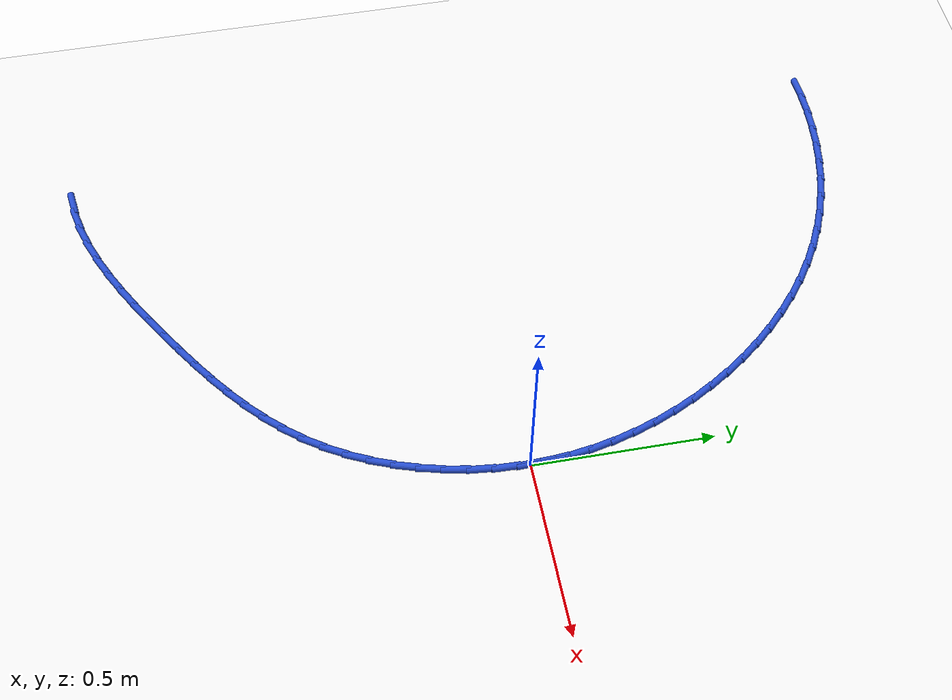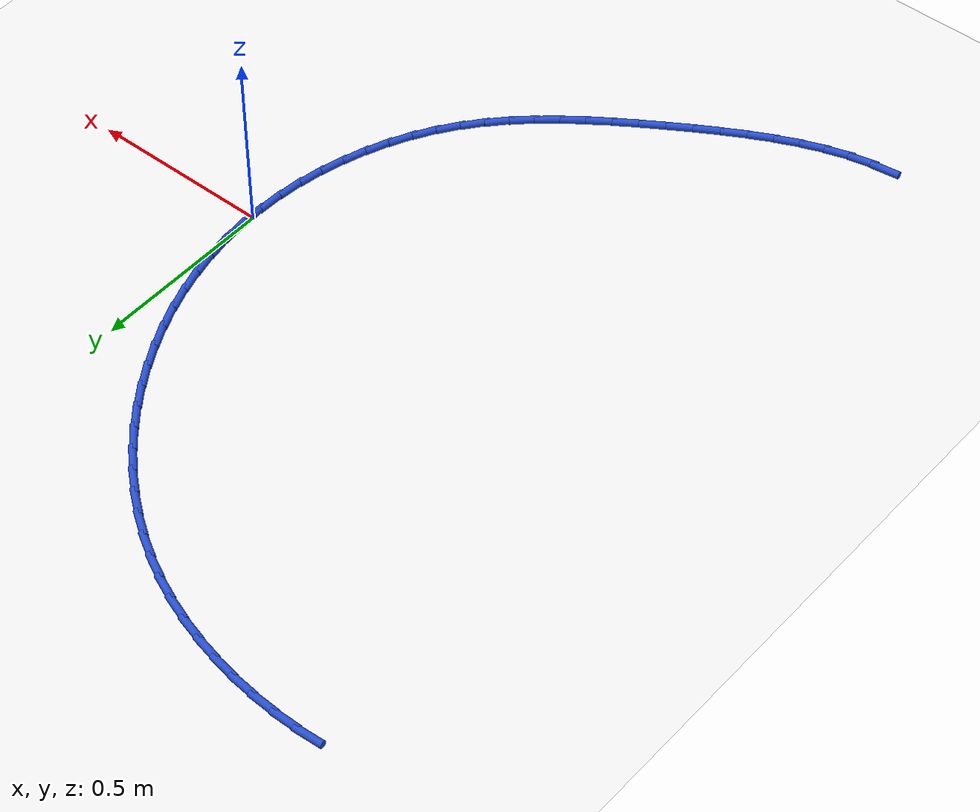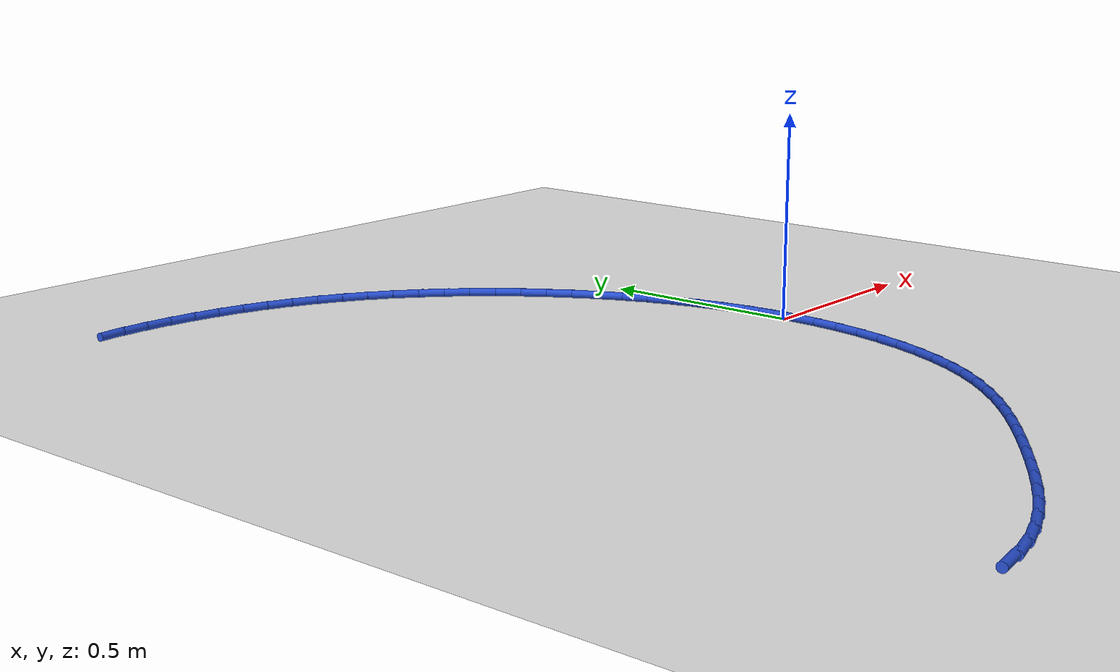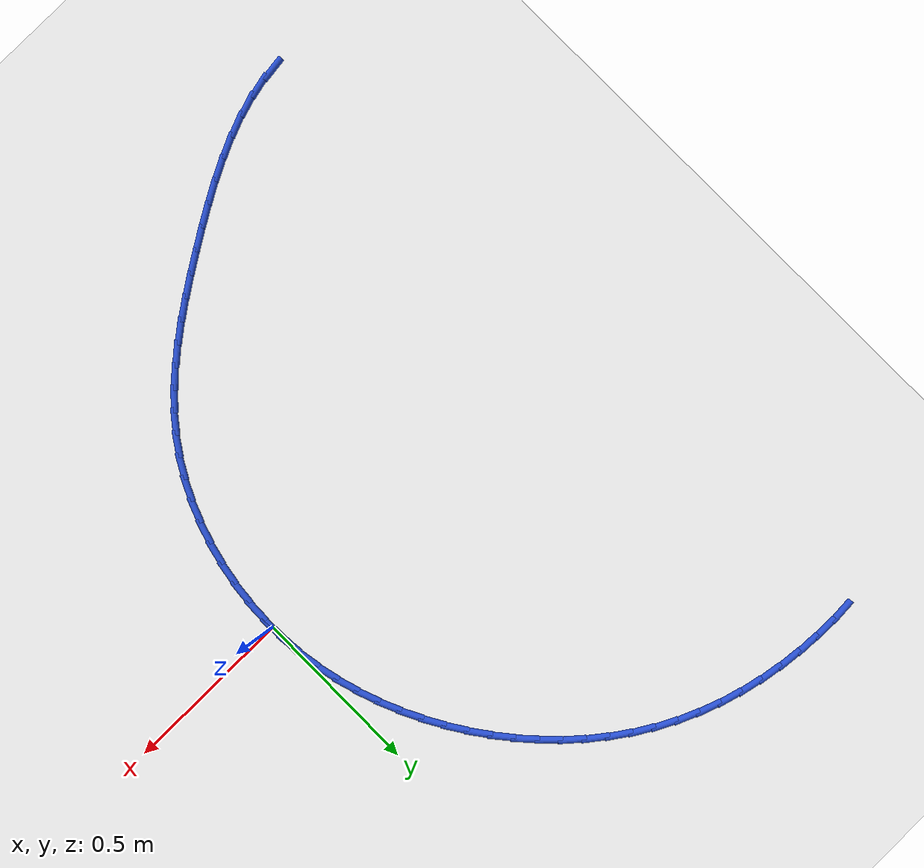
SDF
<sdf version="1.6">
 <world name="default">
  <model name="ground_plane">
   <static>1</static>
   <link name="link">
    <collision name="collision">
     <geometry><plane><normal>0 0 1</normal><size>100 100</size></plane></geometry>
     <surface><friction><ode><mu>100</mu><mu2>50</mu2></ode></friction></surface>
    </collision>
    <visual name="visual">
     <cast_shadows>0</cast_shadows>
     <geometry><plane><normal>0 0 1</normal><size>100 100</size></plane></geometry>
     <material>
      <script><uri>file://media/materials/scripts/gazebo.material</uri><name>Gazebo/WhiteGlow</name></script>
     </material>
    </visual>
   </link>
  </model>
  <model name="line">
   <link name="link_0">
    <pose>-7.979727989493313e-17 1.3877787807814457e-17 0.01 0 1.57 -1.5279142954471263</pose>
    <collision name="collision">
     <geometry><cylinder><radius>0.01</radius><length>0.08</length></cylinder></geometry>
    </collision>
    <visual name="visual">
     <material>
      <script><name>Gazebo/Blue</name><uri>file://media/materials/scripts/gazebo.material</uri></script>
     </material>
     <geometry><cylinder><radius>0.01</radius><length>0.08</length></cylinder></geometry>
    </visual>
   </link>
   <link name="link_1">
    <pose>-0.0028161424252968834 0.0656315933088628 0.01 0 1.57 -1.4605351264026847</pose>
    <collision name="collision">
     <geometry><cylinder><radius>0.01</radius><length>0.08</length></cylinder></geometry>
    </collision>
    <visual name="visual">
     <material>
      <script><name>Gazebo/Blue</name><uri>file://media/materials/scripts/gazebo.material</uri></script>
     </material>
     <geometry><cylinder><radius>0.01</radius><length>0.08</length></cylinder></geometry>
    </visual>
   </link>
   <link name="link_2">
    <pose>-0.01001759645494941 0.13067937396995663 0.01 0 1.57 -1.395145858475235</pose>
    <collision name="collision">
     <geometry><cylinder><radius>0.01</radius><length>0.08</length></cylinder></geometry>
    </collision>
    <visual name="visual">
     <material>
      <script><name>Gazebo/Blue</name><uri>file://media/materials/scripts/gazebo.material</uri></script>
     </material>
     <geometry><cylinder><radius>0.01</radius><length>0.08</length></cylinder></geometry>
    </visual>
   </link>
   <link name="link_3">
    <pose>-0.02143200022499215 0.194993302911763 0.01 0 1.57 -1.3317990939673217</pose>
    <collision name="collision">
     <geometry><cylinder><radius>0.01</radius><length>0.08</length></cylinder></geometry>
    </collision>
    <visual name="visual">
     <material>
      <script><name>Gazebo/Blue</name><uri>file://media/materials/scripts/gazebo.material</uri></script>
     </material>
     <geometry><cylinder><radius>0.01</radius><length>0.08</length></cylinder></geometry>
    </visual>
   </link>
   <link name="link_4">
    <pose>-0.03688699187145962 0.25842334106276366 0.01 0 1.57 -1.270476911578081</pose>
    <collision name="collision">
     <geometry><cylinder><radius>0.01</radius><length>0.08</length></cylinder></geometry>
    </collision>
    <visual name="visual">
     <material>
      <script><name>Gazebo/Blue</name><uri>file://media/materials/scripts/gazebo.material</uri></script>
     </material>
     <geometry><cylinder><radius>0.01</radius><length>0.08</length></cylinder></geometry>
    </visual>
   </link>
   <link name="link_5">
    <pose>-0.05621020953038636 0.3208194493514399 0.01 0 1.57 -1.2111017509860567</pose>
    <collision name="collision">
     <geometry><cylinder><radius>0.01</radius><length>0.08</length></cylinder></geometry>
    </collision>
    <visual name="visual">
     <material>
      <script><name>Gazebo/Blue</name><uri>file://media/materials/scripts/gazebo.material</uri></script>
     </material>
     <geometry><cylinder><radius>0.01</radius><length>0.08</length></cylinder></geometry>
    </visual>
   </link>
   <link name="link_6">
    <pose>-0.07922929133780678 0.38203158870627335 0.01 0 1.57 -1.1535474959033172</pose>
    <collision name="collision">
     <geometry><cylinder><radius>0.01</radius><length>0.08</length></cylinder></geometry>
    </collision>
    <visual name="visual">
     <material>
      <script><name>Gazebo/Blue</name><uri>file://media/materials/scripts/gazebo.material</uri></script>
     </material>
     <geometry><cylinder><radius>0.01</radius><length>0.08</length></cylinder></geometry>
    </visual>
   </link>
   <link name="link_7">
    <pose>-0.10577187542975545 0.4419097200557455 0.01 0 1.57 -1.097649775454241</pose>
    <collision name="collision">
     <geometry><cylinder><radius>0.01</radius><length>0.08</length></cylinder></geometry>
    </collision>
    <visual name="visual">
     <material>
      <script><name>Gazebo/Blue</name><uri>file://media/materials/scripts/gazebo.material</uri></script>
     </material>
     <geometry><cylinder><radius>0.01</radius><length>0.08</length></cylinder></geometry>
    </visual>
   </link>
   <link name="link_8">
    <pose>-0.13566559994226687 0.5003038043283379 0.01 0 1.57 -1.043209097644131</pose>
    <collision name="collision">
     <geometry><cylinder><radius>0.01</radius><length>0.08</length></cylinder></geometry>
    </collision>
    <visual name="visual">
     <material>
      <script><name>Gazebo/Blue</name><uri>file://media/materials/scripts/gazebo.material</uri></script>
     </material>
     <geometry><cylinder><radius>0.01</radius><length>0.08</length></cylinder></geometry>
    </visual>
   </link>
   <link name="link_9">
    <pose>-0.16873838789608753 0.5570635335554002 0.01 0 1.57 -0.9895268472440248</pose>
    <collision name="collision">
     <geometry><cylinder><radius>0.01</radius><length>0.08</length></cylinder></geometry>
    </collision>
    <visual name="visual">
     <material>
      <script><name>Gazebo/Blue</name><uri>file://media/materials/scripts/gazebo.material</uri></script>
     </material>
     <geometry><cylinder><radius>0.01</radius><length>0.08</length></cylinder></geometry>
    </visual>
   </link>
   <link name="link_10">
    <pose>-0.20484160767607043 0.6120164701456514 0.01 0 1.57 -0.9355183072577458</pose>
    <collision name="collision">
     <geometry><cylinder><radius>0.01</radius><length>0.08</length></cylinder></geometry>
    </collision>
    <visual name="visual">
     <material>
      <script><name>Gazebo/Blue</name><uri>file://media/materials/scripts/gazebo.material</uri></script>
     </material>
     <geometry><cylinder><radius>0.01</radius><length>0.08</length></cylinder></geometry>
    </visual>
   </link>
   <link name="link_11">
    <pose>-0.2438671852484205 0.6649518949965499 0.01 0 1.57 -0.8808367066420126</pose>
    <collision name="collision">
     <geometry><cylinder><radius>0.01</radius><length>0.08</length></cylinder></geometry>
    </collision>
    <visual name="visual">
     <material>
      <script><name>Gazebo/Blue</name><uri>file://media/materials/scripts/gazebo.material</uri></script>
     </material>
     <geometry><cylinder><radius>0.01</radius><length>0.08</length></cylinder></geometry>
    </visual>
   </link>
   <link name="link_12">
    <pose>-0.28571107956530833 0.7156552823486332 0.01 0 1.57 -0.8252268371504669</pose>
    <collision name="collision">
     <geometry><cylinder><radius>0.01</radius><length>0.08</length></cylinder></geometry>
    </collision>
    <visual name="visual">
     <material>
      <script><name>Gazebo/Blue</name><uri>file://media/materials/scripts/gazebo.material</uri></script>
     </material>
     <geometry><cylinder><radius>0.01</radius><length>0.08</length></cylinder></geometry>
    </visual>
   </link>
   <link name="link_13">
    <pose>-0.33026924957890463 0.7639121064424407 0.01 0 1.57 -0.7684463655867138</pose>
    <collision name="collision">
     <geometry><cylinder><radius>0.01</radius><length>0.08</length></cylinder></geometry>
    </collision>
    <visual name="visual">
     <material>
      <script><name>Gazebo/Blue</name><uri>file://media/materials/scripts/gazebo.material</uri></script>
     </material>
     <geometry><cylinder><radius>0.01</radius><length>0.08</length></cylinder></geometry>
    </visual>
   </link>
   <link name="link_14">
    <pose>-0.37743765424137987 0.8095078415185099 0.01 0 1.57 -0.7102706116272112</pose>
    <collision name="collision">
     <geometry><cylinder><radius>0.01</radius><length>0.08</length></cylinder></geometry>
    </collision>
    <visual name="visual">
     <material>
      <script><name>Gazebo/Blue</name><uri>file://media/materials/scripts/gazebo.material</uri></script>
     </material>
     <geometry><cylinder><radius>0.01</radius><length>0.08</length></cylinder></geometry>
    </visual>
   </link>
   <link name="link_15">
    <pose>-0.42711225250490514 0.8522279618173798 0.01 0 1.57 -0.6504988185126608</pose>
    <collision name="collision">
     <geometry><cylinder><radius>0.01</radius><length>0.08</length></cylinder></geometry>
    </collision>
    <visual name="visual">
     <material>
      <script><name>Gazebo/Blue</name><uri>file://media/materials/scripts/gazebo.material</uri></script>
     </material>
     <geometry><cylinder><radius>0.01</radius><length>0.08</length></cylinder></geometry>
    </visual>
   </link>
   <link name="link_16">
    <pose>-0.4791890033216507 0.8918579415795889 0.01 0 1.57 -0.5889620584488303</pose>
    <collision name="collision">
     <geometry><cylinder><radius>0.01</radius><length>0.08</length></cylinder></geometry>
    </collision>
    <visual name="visual">
     <material>
      <script><name>Gazebo/Blue</name><uri>file://media/materials/scripts/gazebo.material</uri></script>
     </material>
     <geometry><cylinder><radius>0.01</radius><length>0.08</length></cylinder></geometry>
    </visual>
   </link>
   <link name="link_17">
    <pose>-0.5335638656437873 0.9281832550456752 0.01 0 1.57 -0.5255327382437927</pose>
    <collision name="collision">
     <geometry><cylinder><radius>0.01</radius><length>0.08</length></cylinder></geometry>
    </collision>
    <visual name="visual">
     <material>
      <script><name>Gazebo/Blue</name><uri>file://media/materials/scripts/gazebo.material</uri></script>
     </material>
     <geometry><cylinder><radius>0.01</radius><length>0.08</length></cylinder></geometry>
    </visual>
   </link>
   <link name="link_18">
    <pose>-0.5901327984234859 0.9609893764561774 0.01 0 1.57 -0.4602257278906955</pose>
    <collision name="collision">
     <geometry><cylinder><radius>0.01</radius><length>0.08</length></cylinder></geometry>
    </collision>
    <visual name="visual">
     <material>
      <script><name>Gazebo/Blue</name><uri>file://media/materials/scripts/gazebo.material</uri></script>
     </material>
     <geometry><cylinder><radius>0.01</radius><length>0.08</length></cylinder></geometry>
    </visual>
   </link>
   <link name="link_19">
    <pose>-0.6487885038114534 0.9900667656379253 0.01 0 1.57 -0.3951751838722275</pose>
    <collision name="collision">
     <geometry><cylinder><radius>0.01</radius><length>0.08</length></cylinder></geometry>
    </collision>
    <visual name="visual">
     <material>
      <script><name>Gazebo/Blue</name><uri>file://media/materials/scripts/gazebo.material</uri></script>
     </material>
     <geometry><cylinder><radius>0.01</radius><length>0.08</length></cylinder></geometry>
    </visual>
   </link>
   <link name="link_20">
    <pose>-0.7093452027007596 1.0153260233248833 0.01 0 1.57 -0.33248594146801286</pose>
    <collision name="collision">
     <geometry><cylinder><radius>0.01</radius><length>0.08</length></cylinder></geometry>
    </collision>
    <visual name="visual">
     <material>
      <script><name>Gazebo/Blue</name><uri>file://media/materials/scripts/gazebo.material</uri></script>
     </material>
     <geometry><cylinder><radius>0.01</radius><length>0.08</length></cylinder></geometry>
    </visual>
   </link>
   <link name="link_21">
    <pose>-0.7715365957910769 1.0368010124077216 0.01 0 1.57 -0.27205247683673445</pose>
    <collision name="collision">
     <geometry><cylinder><radius>0.01</radius><length>0.08</length></cylinder></geometry>
    </collision>
    <visual name="visual">
     <material>
      <script><name>Gazebo/Blue</name><uri>file://media/materials/scripts/gazebo.material</uri></script>
     </material>
     <geometry><cylinder><radius>0.01</radius><length>0.08</length></cylinder></geometry>
    </visual>
   </link>
   <link name="link_22">
    <pose>-0.835092719109369 1.0545312057420502 0.01 0 1.57 -0.2136224137396692</pose>
    <collision name="collision">
     <geometry><cylinder><radius>0.01</radius><length>0.08</length></cylinder></geometry>
    </collision>
    <visual name="visual">
     <material>
      <script><name>Gazebo/Blue</name><uri>file://media/materials/scripts/gazebo.material</uri></script>
     </material>
     <geometry><cylinder><radius>0.01</radius><length>0.08</length></cylinder></geometry>
    </visual>
   </link>
   <link name="link_23">
    <pose>-0.899743608682599 1.068556076183478 0.01 0 1.57 -0.15691111343266903</pose>
    <collision name="collision">
     <geometry><cylinder><radius>0.01</radius><length>0.08</length></cylinder></geometry>
    </collision>
    <visual name="visual">
     <material>
      <script><name>Gazebo/Blue</name><uri>file://media/materials/scripts/gazebo.material</uri></script>
     </material>
     <geometry><cylinder><radius>0.01</radius><length>0.08</length></cylinder></geometry>
    </visual>
   </link>
   <link name="link_24">
    <pose>-0.9652193005377302 1.078915096587614 0.01 0 1.57 -0.10161142117490848</pose>
    <collision name="collision">
     <geometry><cylinder><radius>0.01</radius><length>0.08</length></cylinder></geometry>
    </collision>
    <visual name="visual">
     <material>
      <script><name>Gazebo/Blue</name><uri>file://media/materials/scripts/gazebo.material</uri></script>
     </material>
     <geometry><cylinder><radius>0.01</radius><length>0.08</length></cylinder></geometry>
    </visual>
   </link>
   <link name="link_25">
    <pose>-1.031249830701726 1.0856477398100681 0.01 0 1.57 -0.04740048879681563</pose>
    <collision name="collision">
     <geometry><cylinder><radius>0.01</radius><length>0.08</length></cylinder></geometry>
    </collision>
    <visual name="visual">
     <material>
      <script><name>Gazebo/Blue</name><uri>file://media/materials/scripts/gazebo.material</uri></script>
     </material>
     <geometry><cylinder><radius>0.01</radius><length>0.08</length></cylinder></geometry>
    </visual>
   </link>
   <link name="link_26">
    <pose>-1.0975652352015488 1.088793478706449 0.01 0 1.57 0.006055868487981758</pose>
    <collision name="collision">
     <geometry><cylinder><radius>0.01</radius><length>0.08</length></cylinder></geometry>
    </collision>
    <visual name="visual">
     <material>
      <script><name>Gazebo/Blue</name><uri>file://media/materials/scripts/gazebo.material</uri></script>
     </material>
     <geometry><cylinder><radius>0.01</radius><length>0.08</length></cylinder></geometry>
    </visual>
   </link>
   <link name="link_27">
    <pose>-1.163895550064163 1.088391786132366 0.01 0 1.57 0.05910075946746137</pose>
    <collision name="collision">
     <geometry><cylinder><radius>0.01</radius><length>0.08</length></cylinder></geometry>
    </collision>
    <visual name="visual">
     <material>
      <script><name>Gazebo/Blue</name><uri>file://media/materials/scripts/gazebo.material</uri></script>
     </material>
     <geometry><cylinder><radius>0.01</radius><length>0.08</length></cylinder></geometry>
    </visual>
   </link>
   <link name="link_84">
    <pose>-1.1058360042295108 -1.1333314303173172 0.01 0 1.57 0.13418825045508218</pose>
    <collision name="collision">
     <geometry><cylinder><radius>0.01</radius><length>0.08</length></cylinder></geometry>
    </collision>
    <visual name="visual">
     <material>
      <script><name>Gazebo/Blue</name><uri>file://media/materials/scripts/gazebo.material</uri></script>
     </material>
     <geometry><cylinder><radius>0.01</radius><length>0.08</length></cylinder></geometry>
    </visual>
   </link>
   <link name="link_85">
    <pose>-1.0447973617438873 -1.1250912432587274 0.01 0 1.57 0.23651956339497793</pose>
    <collision name="collision">
     <geometry><cylinder><radius>0.01</radius><length>0.08</length></cylinder></geometry>
    </collision>
    <visual name="visual">
     <material>
      <script><name>Gazebo/Blue</name><uri>file://media/materials/scripts/gazebo.material</uri></script>
     </material>
     <geometry><cylinder><radius>0.01</radius><length>0.08</length></cylinder></geometry>
    </visual>
   </link>
   <link name="link_86">
    <pose>-0.9833769156539903 -1.1102870141676664 0.01 0 1.57 0.32157869931395916</pose>
    <collision name="collision">
     <geometry><cylinder><radius>0.01</radius><length>0.08</length></cylinder></geometry>
    </collision>
    <visual name="visual">
     <material>
      <script><name>Gazebo/Blue</name><uri>file://media/materials/scripts/gazebo.material</uri></script>
     </material>
     <geometry><cylinder><radius>0.01</radius><length>0.08</length></cylinder></geometry>
    </visual>
   </link>
   <link name="link_87">
    <pose>-0.9217872680037457 -1.089768891492913 0.01 0 1.57 0.3911528318984798</pose>
    <collision name="collision">
     <geometry><cylinder><radius>0.01</radius><length>0.08</length></cylinder></geometry>
    </collision>
    <visual name="visual">
     <material>
      <script><name>Gazebo/Blue</name><uri>file://media/materials/scripts/gazebo.material</uri></script>
     </material>
     <geometry><cylinder><radius>0.01</radius><length>0.08</length></cylinder></geometry>
    </visual>
   </link>
   <link name="link_88">
    <pose>-0.8602410208370816 -1.0643870236832456 0.01 0 1.57 0.4472036235814082</pose>
    <collision name="collision">
     <geometry><cylinder><radius>0.01</radius><length>0.08</length></cylinder></geometry>
    </collision>
    <visual name="visual">
     <material>
      <script><name>Gazebo/Blue</name><uri>file://media/materials/scripts/gazebo.material</uri></script>
     </material>
     <geometry><cylinder><radius>0.01</radius><length>0.08</length></cylinder></geometry>
    </visual>
   </link>
   <link name="link_89">
    <pose>-0.7989507761979232 -1.0349915591874421 0.01 0 1.57 0.49150113196856415</pose>
    <collision name="collision">
     <geometry><cylinder><radius>0.01</radius><length>0.08</length></cylinder></geometry>
    </collision>
    <visual name="visual">
     <material>
      <script><name>Gazebo/Blue</name><uri>file://media/materials/scripts/gazebo.material</uri></script>
     </material>
     <geometry><cylinder><radius>0.01</radius><length>0.08</length></cylinder></geometry>
    </visual>
   </link>
   <link name="link_90">
    <pose>-0.7381291361301986 -1.002432646454282 0.01 0 1.57 0.5254688339395455</pose>
    <collision name="collision">
     <geometry><cylinder><radius>0.01</radius><length>0.08</length></cylinder></geometry>
    </collision>
    <visual name="visual">
     <material>
      <script><name>Gazebo/Blue</name><uri>file://media/materials/scripts/gazebo.material</uri></script>
     </material>
     <geometry><cylinder><radius>0.01</radius><length>0.08</length></cylinder></geometry>
    </visual>
   </link>
   <link name="link_91">
    <pose>-0.6779887026778333 -0.9675604339325435 0.01 0 1.57 0.550134308027633</pose>
    <collision name="collision">
     <geometry><cylinder><radius>0.01</radius><length>0.08</length></cylinder></geometry>
    </collision>
    <visual name="visual">
     <material>
      <script><name>Gazebo/Blue</name><uri>file://media/materials/scripts/gazebo.material</uri></script>
     </material>
     <geometry><cylinder><radius>0.01</radius><length>0.08</length></cylinder></geometry>
    </visual>
   </link>
   <link name="link_92">
    <pose>-0.6187420778847552 -0.9312250700710051 0.01 0 1.57 0.5663059396451863</pose>
    <collision name="collision">
     <geometry><cylinder><radius>0.01</radius><length>0.08</length></cylinder></geometry>
    </collision>
    <visual name="visual">
     <material>
      <script><name>Gazebo/Blue</name><uri>file://media/materials/scripts/gazebo.material</uri></script>
     </material>
     <geometry><cylinder><radius>0.01</radius><length>0.08</length></cylinder></geometry>
    </visual>
   </link>
   <link name="link_93">
    <pose>-0.5606028968671901 -0.8942619747841567 0.01 0 1.57 0.5809711072813776</pose>
    <collision name="collision">
     <geometry><cylinder><radius>0.01</radius><length>0.08</length></cylinder></geometry>
    </collision>
    <visual name="visual">
     <material>
      <script><name>Gazebo/Blue</name><uri>file://media/materials/scripts/gazebo.material</uri></script>
     </material>
     <geometry><cylinder><radius>0.01</radius><length>0.08</length></cylinder></geometry>
    </visual>
   </link>
   <link name="link_94">
    <pose>-0.5038216022708099 -0.856981802237207 0.01 0 1.57 0.6028049261236064</pose>
    <collision name="collision">
     <geometry><cylinder><radius>0.01</radius><length>0.08</length></cylinder></geometry>
    </collision>
    <visual name="visual">
     <material>
      <script><name>Gazebo/Blue</name><uri>file://media/materials/scripts/gazebo.material</uri></script>
     </material>
     <geometry><cylinder><radius>0.01</radius><length>0.08</length></cylinder></geometry>
    </visual>
   </link>
   <link name="link_95">
    <pose>-0.4486945968525079 -0.819039952288225 0.01 0 1.57 0.6326939878229514</pose>
    <collision name="collision">
     <geometry><cylinder><radius>0.01</radius><length>0.08</length></cylinder></geometry>
    </collision>
    <visual name="visual">
     <material>
      <script><name>Gazebo/Blue</name><uri>file://media/materials/scripts/gazebo.material</uri></script>
     </material>
     <geometry><cylinder><radius>0.01</radius><length>0.08</length></cylinder></geometry>
    </visual>
   </link>
   <link name="link_96">
    <pose>-0.3955211753029829 -0.7800505944320455 0.01 0 1.57 0.6709727277485658</pose>
    <collision name="collision">
     <geometry><cylinder><radius>0.01</radius><length>0.08</length></cylinder></geometry>
    </collision>
    <visual name="visual">
     <material>
      <script><name>Gazebo/Blue</name><uri>file://media/materials/scripts/gazebo.material</uri></script>
     </material>
     <geometry><cylinder><radius>0.01</radius><length>0.08</length></cylinder></geometry>
    </visual>
   </link>
   <link name="link_97">
    <pose>-0.34460063231293153 -0.7396278981635014 0.01 0 1.57 0.71788709195961</pose>
    <collision name="collision">
     <geometry><cylinder><radius>0.01</radius><length>0.08</length></cylinder></geometry>
    </collision>
    <visual name="visual">
     <material>
      <script><name>Gazebo/Blue</name><uri>file://media/materials/scripts/gazebo.material</uri></script>
     </material>
     <geometry><cylinder><radius>0.01</radius><length>0.08</length></cylinder></geometry>
    </visual>
   </link>
   <link name="link_98">
    <pose>-0.29623226257305046 -0.6973860329774259 0.01 0 1.57 0.7735046336123282</pose>
    <collision name="collision">
     <geometry><cylinder><radius>0.01</radius><length>0.08</length></cylinder></geometry>
    </collision>
    <visual name="visual">
     <material>
      <script><name>Gazebo/Blue</name><uri>file://media/materials/scripts/gazebo.material</uri></script>
     </material>
     <geometry><cylinder><radius>0.01</radius><length>0.08</length></cylinder></geometry>
    </visual>
   </link>
   <link name="link_99">
    <pose>-0.2507153607740383 -0.6529391683686537 0.01 0 1.57 0.8376029799157517</pose>
    <collision name="collision">
     <geometry><cylinder><radius>0.01</radius><length>0.08</length></cylinder></geometry>
    </collision>
    <visual name="visual">
     <material>
      <script><name>Gazebo/Blue</name><uri>file://media/materials/scripts/gazebo.material</uri></script>
     </material>
     <geometry><cylinder><radius>0.01</radius><length>0.08</length></cylinder></geometry>
    </visual>
   </link>
   <link name="link_100">
    <pose>-0.2083492216065913 -0.6059014738320176 0.01 0 1.57 0.9095535129914368</pose>
    <collision name="collision">
     <geometry><cylinder><radius>0.01</radius><length>0.08</length></cylinder></geometry>
    </collision>
    <visual name="visual">
     <material>
      <script><name>Gazebo/Blue</name><uri>file://media/materials/scripts/gazebo.material</uri></script>
     </material>
     <geometry><cylinder><radius>0.01</radius><length>0.08</length></cylinder></geometry>
    </visual>
   </link>
   <link name="link_101">
    <pose>-0.1694331397614078 -0.5558871188623523 0.01 0 1.57 0.9876412940167634</pose>
    <collision name="collision">
     <geometry><cylinder><radius>0.01</radius><length>0.08</length></cylinder></geometry>
    </collision>
    <visual name="visual">
     <material>
      <script><name>Gazebo/Blue</name><uri>file://media/materials/scripts/gazebo.material</uri></script>
     </material>
     <geometry><cylinder><radius>0.01</radius><length>0.08</length></cylinder></geometry>
    </visual>
   </link>
   <link name="link_102">
    <pose>-0.13425362888015352 -0.5025595492471466 0.01 0 1.57 1.0649679623235684</pose>
    <collision name="collision">
     <geometry><cylinder><radius>0.01</radius><length>0.08</length></cylinder></geometry>
    </collision>
    <visual name="visual">
     <material>
      <script><name>Gazebo/Blue</name><uri>file://media/materials/scripts/gazebo.material</uri></script>
     </material>
     <geometry><cylinder><radius>0.01</radius><length>0.08</length></cylinder></geometry>
    </visual>
   </link>
   <link name="link_103">
    <pose>-0.10296867043498213 -0.44607775607581 0.01 0 1.57 1.1385556326988893</pose>
    <collision name="collision">
     <geometry><cylinder><radius>0.01</radius><length>0.08</length></cylinder></geometry>
    </collision>
    <visual name="visual">
     <material>
      <script><name>Gazebo/Blue</name><uri>file://media/materials/scripts/gazebo.material</uri></script>
     </material>
     <geometry><cylinder><radius>0.01</radius><length>0.08</length></cylinder></geometry>
    </visual>
   </link>
   <link name="link_104">
    <pose>-0.07566194453654289 -0.38688719328015003 0.01 0 1.57 1.2091494492592716</pose>
    <collision name="collision">
     <geometry><cylinder><radius>0.01</radius><length>0.08</length></cylinder></geometry>
    </collision>
    <visual name="visual">
     <material>
      <script><name>Gazebo/Blue</name><uri>file://media/materials/scripts/gazebo.material</uri></script>
     </material>
     <geometry><cylinder><radius>0.01</radius><length>0.08</length></cylinder></geometry>
    </visual>
   </link>
   <link name="link_105">
    <pose>-0.05241622845934905 -0.32543679560310695 0.01 0 1.57 1.277548893896964</pose>
    <collision name="collision">
     <geometry><cylinder><radius>0.01</radius><length>0.08</length></cylinder></geometry>
    </collision>
    <visual name="visual">
     <material>
      <script><name>Gazebo/Blue</name><uri>file://media/materials/scripts/gazebo.material</uri></script>
     </material>
     <geometry><cylinder><radius>0.01</radius><length>0.08</length></cylinder></geometry>
    </visual>
   </link>
   <link name="link_106">
    <pose>-0.033314299477912784 -0.2621754977876184 0.01 0 1.57 1.3445513770601942</pose>
    <collision name="collision">
     <geometry><cylinder><radius>0.01</radius><length>0.08</length></cylinder></geometry>
    </collision>
    <visual name="visual">
     <material>
      <script><name>Gazebo/Blue</name><uri>file://media/materials/scripts/gazebo.material</uri></script>
     </material>
     <geometry><cylinder><radius>0.01</radius><length>0.08</length></cylinder></geometry>
    </visual>
   </link>
   <link name="link_107">
    <pose>-0.018438934866747247 -0.19755223457662513 0.01 0 1.57 1.4109478523555208</pose>
    <collision name="collision">
     <geometry><cylinder><radius>0.01</radius><length>0.08</length></cylinder></geometry>
    </collision>
    <visual name="visual">
     <material>
      <script><name>Gazebo/Blue</name><uri>file://media/materials/scripts/gazebo.material</uri></script>
     </material>
     <geometry><cylinder><radius>0.01</radius><length>0.08</length></cylinder></geometry>
    </visual>
   </link>
   <link name="link_108">
    <pose>-0.007872911900364703 -0.13201594071306436 0.01 0 1.57 1.4775243017063069</pose>
    <collision name="collision">
     <geometry><cylinder><radius>0.01</radius><length>0.08</length></cylinder></geometry>
    </collision>
    <visual name="visual">
     <material>
      <script><name>Gazebo/Blue</name><uri>file://media/materials/scripts/gazebo.material</uri></script>
     </material>
     <geometry><cylinder><radius>0.01</radius><length>0.08</length></cylinder></geometry>
    </visual>
   </link>
   <link name="link_109">
    <pose>-0.0016990078532781554 -0.06601555093987685 0.01 0 1.57 1.5450655276692142</pose>
    <collision name="collision">
     <geometry><cylinder><radius>0.01</radius><length>0.08</length></cylinder></geometry>
    </collision>
    <visual name="visual">
     <material>
      <script><name>Gazebo/Blue</name><uri>file://media/materials/scripts/gazebo.material</uri></script>
     </material>
     <geometry><cylinder><radius>0.01</radius><length>0.08</length></cylinder></geometry>
    </visual>
   </link>
   <link name="link_110">
    <pose>-8.326672684688674e-17 6.938893903907228e-17 0.01 0 1.57 -1.527234574205222</pose>
    <collision name="collision">
     <geometry><cylinder><radius>0.01</radius><length>0.08</length></cylinder></geometry>
    </collision>
    <visual name="visual">
     <material>
      <script><name>Gazebo/Blue</name><uri>file://media/materials/scripts/gazebo.material</uri></script>
     </material>
     <geometry><cylinder><radius>0.01</radius><length>0.08</length></cylinder></geometry>
    </visual>
   </link>
   <link name="link_111">
    <pose>-0.002858665615043228 0.06558177736362575 0.01 0 1.57 -1.527234574205222</pose>
    <collision name="collision">
     <geometry><cylinder><radius>0.01</radius><length>0.08</length></cylinder></geometry>
    </collision>
    <visual name="visual">
     <material>
      <script><name>Gazebo/Blue</name><uri>file://media/materials/scripts/gazebo.material</uri></script>
     </material>
     <geometry><cylinder><radius>0.01</radius><length>0.08</length></cylinder></geometry>
    </visual>
   </link>
  </model>
 </world>
</sdf>
